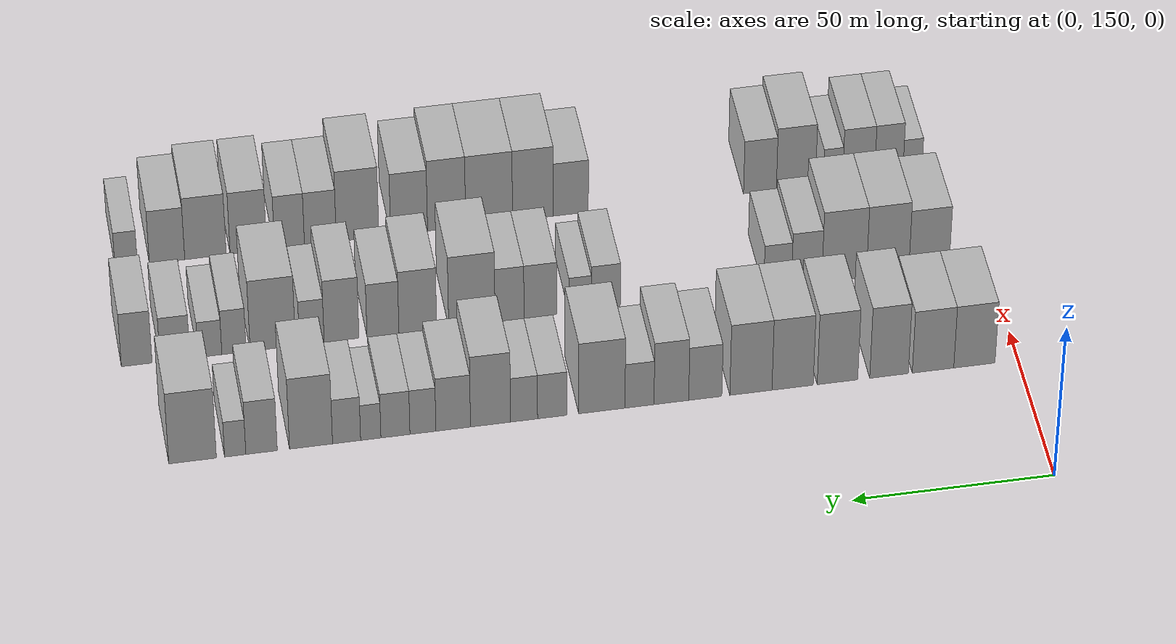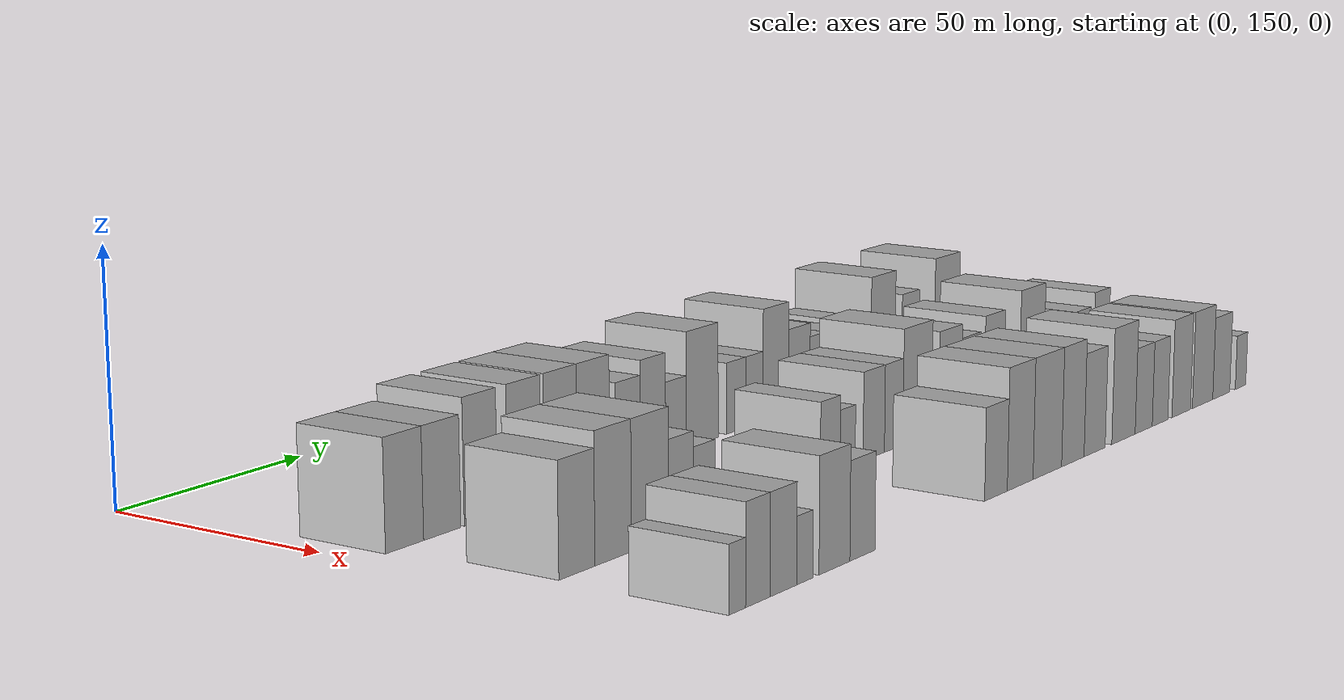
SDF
<sdf version="1.6">
 <world name="default">
  <model name="building_57">
   <static>1</static>
   <pose>50.0000 161.1066 0 0.000000 0.000000 0.000000</pose>
   <link name="link">
    <pose>0 0 10.50 0 0 0</pose>
    <collision name="collision"><geometry><box><size>20.0000 10.3818 21.0000</size></box></geometry></collision>
    <visual name="visual">
     <cast_shadows>0</cast_shadows>
     <geometry><box><size>20.0000 10.3818 21.0000</size></box></geometry>
     <material>
      <script>
       <uri>model://HANNAS_wall/materials/scripts</uri>
       <uri>model://HANNAS_wall/materials/textures</uri>
       <name>vrc/HANNAS_wall</name>
      </script>
     </material>
    </visual>
   </link>
  </model>
  <model name="building_58">
   <static>1</static>
   <pose>50.0000 171.5156 0 0.000000 0.000000 0.000000</pose>
   <link name="link">
    <pose>0 0 10.50 0 0 0</pose>
    <collision name="collision"><geometry><box><size>20.0000 10.4361 21.0000</size></box></geometry></collision>
    <visual name="visual">
     <cast_shadows>0</cast_shadows>
     <geometry><box><size>20.0000 10.4361 21.0000</size></box></geometry>
     <material>
      <script>
       <uri>model://HANNAS_wall/materials/scripts</uri>
       <uri>model://HANNAS_wall/materials/textures</uri>
       <name>vrc/HANNAS_wall</name>
      </script>
     </material>
    </visual>
   </link>
  </model>
  <model name="building_59">
   <static>1</static>
   <pose>50.0000 182.5768 0 0.000000 0.000000 0.000000</pose>
   <link name="link">
    <pose>0 0 12.00 0 0 0</pose>
    <collision name="collision"><geometry><box><size>20.0000 9.6863 24.0000</size></box></geometry></collision>
    <visual name="visual">
     <cast_shadows>0</cast_shadows>
     <geometry><box><size>20.0000 9.6863 24.0000</size></box></geometry>
     <material>
      <script>
       <uri>model://HANNAS_wall/materials/scripts</uri>
       <uri>model://HANNAS_wall/materials/textures</uri>
       <name>vrc/HANNAS_wall</name>
      </script>
     </material>
    </visual>
   </link>
  </model>
  <model name="building_60">
   <static>1</static>
   <pose>50.0000 195.4977 0 0.000000 0.000000 0.000000</pose>
   <link name="link">
    <pose>0 0 12.00 0 0 0</pose>
    <collision name="collision"><geometry><box><size>20.0000 10.1554 24.0000</size></box></geometry></collision>
    <visual name="visual">
     <cast_shadows>0</cast_shadows>
     <geometry><box><size>20.0000 10.1554 24.0000</size></box></geometry>
     <material>
      <script>
       <uri>model://HANNAS_wall/materials/scripts</uri>
       <uri>model://HANNAS_wall/materials/textures</uri>
       <name>vrc/HANNAS_wall</name>
      </script>
     </material>
    </visual>
   </link>
  </model>
  <model name="building_61">
   <static>1</static>
   <pose>50.0000 206.7343 0 0.000000 0.000000 0.000000</pose>
   <link name="link">
    <pose>0 0 12.00 0 0 0</pose>
    <collision name="collision"><geometry><box><size>20.0000 10.3178 24.0000</size></box></geometry></collision>
    <visual name="visual">
     <cast_shadows>0</cast_shadows>
     <geometry><box><size>20.0000 10.3178 24.0000</size></box></geometry>
     <material>
      <script>
       <uri>model://HANNAS_wall/materials/scripts</uri>
       <uri>model://HANNAS_wall/materials/textures</uri>
       <name>vrc/HANNAS_wall</name>
      </script>
     </material>
    </visual>
   </link>
  </model>
  <model name="building_62">
   <static>1</static>
   <pose>50.0000 217.1510 0 0.000000 0.000000 0.000000</pose>
   <link name="link">
    <pose>0 0 12.00 0 0 0</pose>
    <collision name="collision"><geometry><box><size>20.0000 10.5157 24.0000</size></box></geometry></collision>
    <visual name="visual">
     <cast_shadows>0</cast_shadows>
     <geometry><box><size>20.0000 10.5157 24.0000</size></box></geometry>
     <material>
      <script>
       <uri>model://HANNAS_wall/materials/scripts</uri>
       <uri>model://HANNAS_wall/materials/textures</uri>
       <name>vrc/HANNAS_wall</name>
      </script>
     </material>
    </visual>
   </link>
  </model>
  <model name="building_63">
   <static>1</static>
   <pose>50.0000 228.5307 0 0.000000 0.000000 0.000000</pose>
   <link name="link">
    <pose>0 0 9.00 0 0 0</pose>
    <collision name="collision"><geometry><box><size>20.0000 8.2437 18.0000</size></box></geometry></collision>
    <visual name="visual">
     <cast_shadows>0</cast_shadows>
     <geometry><box><size>20.0000 8.2437 18.0000</size></box></geometry>
     <material>
      <script>
       <uri>model://HANNAS_wall/materials/scripts</uri>
       <uri>model://HANNAS_wall/materials/textures</uri>
       <name>vrc/HANNAS_wall</name>
      </script>
     </material>
    </visual>
   </link>
  </model>
  <model name="building_64">
   <static>1</static>
   <pose>50.0000 236.9705 0 0.000000 0.000000 0.000000</pose>
   <link name="link">
    <pose>0 0 10.50 0 0 0</pose>
    <collision name="collision"><geometry><box><size>20.0000 8.6359 21.0000</size></box></geometry></collision>
    <visual name="visual">
     <cast_shadows>0</cast_shadows>
     <geometry><box><size>20.0000 8.6359 21.0000</size></box></geometry>
     <material>
      <script>
       <uri>model://HANNAS_wall/materials/scripts</uri>
       <uri>model://HANNAS_wall/materials/textures</uri>
       <name>vrc/HANNAS_wall</name>
      </script>
     </material>
    </visual>
   </link>
  </model>
  <model name="building_65">
   <static>1</static>
   <pose>50.0000 244.8930 0 0.000000 0.000000 0.000000</pose>
   <link name="link">
    <pose>0 0 7.50 0 0 0</pose>
    <collision name="collision"><geometry><box><size>20.0000 7.2090 15.0000</size></box></geometry></collision>
    <visual name="visual">
     <cast_shadows>0</cast_shadows>
     <geometry><box><size>20.0000 7.2090 15.0000</size></box></geometry>
     <material>
      <script>
       <uri>model://HANNAS_wall/materials/scripts</uri>
       <uri>model://HANNAS_wall/materials/textures</uri>
       <name>vrc/HANNAS_wall</name>
      </script>
     </material>
    </visual>
   </link>
  </model>
  <model name="building_66">
   <static>1</static>
   <pose>50.0000 254.2380 0 0.000000 0.000000 0.000000</pose>
   <link name="link">
    <pose>0 0 12.00 0 0 0</pose>
    <collision name="collision"><geometry><box><size>20.0000 11.4810 24.0000</size></box></geometry></collision>
    <visual name="visual">
     <cast_shadows>0</cast_shadows>
     <geometry><box><size>20.0000 11.4810 24.0000</size></box></geometry>
     <material>
      <script>
       <uri>model://HANNAS_wall/materials/scripts</uri>
       <uri>model://HANNAS_wall/materials/textures</uri>
       <name>vrc/HANNAS_wall</name>
      </script>
     </material>
    </visual>
   </link>
  </model>
  <model name="building_67">
   <static>1</static>
   <pose>50.0000 266.5727 0 0.000000 0.000000 0.000000</pose>
   <link name="link">
    <pose>0 0 7.50 0 0 0</pose>
    <collision name="collision"><geometry><box><size>20.0000 7.1884 15.0000</size></box></geometry></collision>
    <visual name="visual">
     <cast_shadows>0</cast_shadows>
     <geometry><box><size>20.0000 7.1884 15.0000</size></box></geometry>
     <material>
      <script>
       <uri>model://HANNAS_wall/materials/scripts</uri>
       <uri>model://HANNAS_wall/materials/textures</uri>
       <name>vrc/HANNAS_wall</name>
      </script>
     </material>
    </visual>
   </link>
  </model>
  <model name="building_68">
   <static>1</static>
   <pose>50.0000 273.5082 0 0.000000 0.000000 0.000000</pose>
   <link name="link">
    <pose>0 0 7.50 0 0 0</pose>
    <collision name="collision"><geometry><box><size>20.0000 6.6827 15.0000</size></box></geometry></collision>
    <visual name="visual">
     <cast_shadows>0</cast_shadows>
     <geometry><box><size>20.0000 6.6827 15.0000</size></box></geometry>
     <material>
      <script>
       <uri>model://HANNAS_wall/materials/scripts</uri>
       <uri>model://HANNAS_wall/materials/textures</uri>
       <name>vrc/HANNAS_wall</name>
      </script>
     </material>
    </visual>
   </link>
  </model>
  <model name="building_69">
   <static>1</static>
   <pose>50.0000 281.7987 0 0.000000 0.000000 0.000000</pose>
   <link name="link">
    <pose>0 0 12.00 0 0 0</pose>
    <collision name="collision"><geometry><box><size>20.0000 9.8983 24.0000</size></box></geometry></collision>
    <visual name="visual">
     <cast_shadows>0</cast_shadows>
     <geometry><box><size>20.0000 9.8983 24.0000</size></box></geometry>
     <material>
      <script>
       <uri>model://HANNAS_wall/materials/scripts</uri>
       <uri>model://HANNAS_wall/materials/textures</uri>
       <name>vrc/HANNAS_wall</name>
      </script>
     </material>
    </visual>
   </link>
  </model>
  <model name="building_70">
   <static>1</static>
   <pose>50.0000 291.0073 0 0.000000 0.000000 0.000000</pose>
   <link name="link">
    <pose>0 0 9.00 0 0 0</pose>
    <collision name="collision"><geometry><box><size>20.0000 8.5188 18.0000</size></box></geometry></collision>
    <visual name="visual">
     <cast_shadows>0</cast_shadows>
     <geometry><box><size>20.0000 8.5188 18.0000</size></box></geometry>
     <material>
      <script>
       <uri>model://HANNAS_wall/materials/scripts</uri>
       <uri>model://HANNAS_wall/materials/textures</uri>
       <name>vrc/HANNAS_wall</name>
      </script>
     </material>
    </visual>
   </link>
  </model>
  <model name="building_71">
   <static>1</static>
   <pose>50.0000 298.4660 0 0.000000 0.000000 0.000000</pose>
   <link name="link">
    <pose>0 0 7.50 0 0 0</pose>
    <collision name="collision"><geometry><box><size>20.0000 6.3985 15.0000</size></box></geometry></collision>
    <visual name="visual">
     <cast_shadows>0</cast_shadows>
     <geometry><box><size>20.0000 6.3985 15.0000</size></box></geometry>
     <material>
      <script>
       <uri>model://HANNAS_wall/materials/scripts</uri>
       <uri>model://HANNAS_wall/materials/textures</uri>
       <name>vrc/HANNAS_wall</name>
      </script>
     </material>
    </visual>
   </link>
  </model>
  <model name="building_72">
   <static>1</static>
   <pose>50.0000 305.2374 0 0.000000 0.000000 0.000000</pose>
   <link name="link">
    <pose>0 0 7.50 0 0 0</pose>
    <collision name="collision"><geometry><box><size>20.0000 7.1443 15.0000</size></box></geometry></collision>
    <visual name="visual">
     <cast_shadows>0</cast_shadows>
     <geometry><box><size>20.0000 7.1443 15.0000</size></box></geometry>
     <material>
      <script>
       <uri>model://HANNAS_wall/materials/scripts</uri>
       <uri>model://HANNAS_wall/materials/textures</uri>
       <name>vrc/HANNAS_wall</name>
      </script>
     </material>
    </visual>
   </link>
  </model>
  <model name="building_73">
   <static>1</static>
   <pose>50.0000 311.3013 0 0.000000 0.000000 0.000000</pose>
   <link name="link">
    <pose>0 0 6.00 0 0 0</pose>
    <collision name="collision"><geometry><box><size>20.0000 4.9836 12.0000</size></box></geometry></collision>
    <visual name="visual">
     <cast_shadows>0</cast_shadows>
     <geometry><box><size>20.0000 4.9836 12.0000</size></box></geometry>
     <material>
      <script>
       <uri>model://HANNAS_wall/materials/scripts</uri>
       <uri>model://HANNAS_wall/materials/textures</uri>
       <name>vrc/HANNAS_wall</name>
      </script>
     </material>
    </visual>
   </link>
  </model>
  <model name="building_74">
   <static>1</static>
   <pose>50.0000 317.2399 0 0.000000 0.000000 0.000000</pose>
   <link name="link">
    <pose>0 0 7.50 0 0 0</pose>
    <collision name="collision"><geometry><box><size>20.0000 6.8936 15.0000</size></box></geometry></collision>
    <visual name="visual">
     <cast_shadows>0</cast_shadows>
     <geometry><box><size>20.0000 6.8936 15.0000</size></box></geometry>
     <material>
      <script>
       <uri>model://HANNAS_wall/materials/scripts</uri>
       <uri>model://HANNAS_wall/materials/textures</uri>
       <name>vrc/HANNAS_wall</name>
      </script>
     </material>
    </visual>
   </link>
  </model>
  <model name="building_75">
   <static>1</static>
   <pose>50.0000 325.9616 0 0.000000 0.000000 0.000000</pose>
   <link name="link">
    <pose>0 0 12.00 0 0 0</pose>
    <collision name="collision"><geometry><box><size>20.0000 10.5498 24.0000</size></box></geometry></collision>
    <visual name="visual">
     <cast_shadows>0</cast_shadows>
     <geometry><box><size>20.0000 10.5498 24.0000</size></box></geometry>
     <material>
      <script>
       <uri>model://HANNAS_wall/materials/scripts</uri>
       <uri>model://HANNAS_wall/materials/textures</uri>
       <name>vrc/HANNAS_wall</name>
      </script>
     </material>
    </visual>
   </link>
  </model>
  <model name="building_76">
   <static>1</static>
   <pose>50.0000 338.0827 0 0.000000 0.000000 0.000000</pose>
   <link name="link">
    <pose>0 0 9.00 0 0 0</pose>
    <collision name="collision"><geometry><box><size>20.0000 7.6923 18.0000</size></box></geometry></collision>
    <visual name="visual">
     <cast_shadows>0</cast_shadows>
     <geometry><box><size>20.0000 7.6923 18.0000</size></box></geometry>
     <material>
      <script>
       <uri>model://HANNAS_wall/materials/scripts</uri>
       <uri>model://HANNAS_wall/materials/textures</uri>
       <name>vrc/HANNAS_wall</name>
      </script>
     </material>
    </visual>
   </link>
  </model>
  <model name="building_77">
   <static>1</static>
   <pose>50.0000 344.5270 0 0.000000 0.000000 0.000000</pose>
   <link name="link">
    <pose>0 0 6.00 0 0 0</pose>
    <collision name="collision"><geometry><box><size>20.0000 5.1963 12.0000</size></box></geometry></collision>
    <visual name="visual">
     <cast_shadows>0</cast_shadows>
     <geometry><box><size>20.0000 5.1963 12.0000</size></box></geometry>
     <material>
      <script>
       <uri>model://HANNAS_wall/materials/scripts</uri>
       <uri>model://HANNAS_wall/materials/textures</uri>
       <name>vrc/HANNAS_wall</name>
      </script>
     </material>
    </visual>
   </link>
  </model>
  <model name="building_78">
   <static>1</static>
   <pose>50.0000 354.9378 0 0.000000 0.000000 0.000000</pose>
   <link name="link">
    <pose>0 0 12.00 0 0 0</pose>
    <collision name="collision"><geometry><box><size>20.0000 11.6253 24.0000</size></box></geometry></collision>
    <visual name="visual">
     <cast_shadows>0</cast_shadows>
     <geometry><box><size>20.0000 11.6253 24.0000</size></box></geometry>
     <material>
      <script>
       <uri>model://HANNAS_wall/materials/scripts</uri>
       <uri>model://HANNAS_wall/materials/textures</uri>
       <name>vrc/HANNAS_wall</name>
      </script>
     </material>
    </visual>
   </link>
  </model>
  <model name="building_136">
   <static>1</static>
   <pose>85.0000 165.0271 0 0.000000 0.000000 0.000000</pose>
   <link name="link">
    <pose>0 0 10.50 0 0 0</pose>
    <collision name="collision"><geometry><box><size>20.0000 10.3113 21.0000</size></box></geometry></collision>
    <visual name="visual">
     <cast_shadows>0</cast_shadows>
     <geometry><box><size>20.0000 10.3113 21.0000</size></box></geometry>
     <material>
      <script>
       <uri>model://HANNAS_wall/materials/scripts</uri>
       <uri>model://HANNAS_wall/materials/textures</uri>
       <name>vrc/HANNAS_wall</name>
      </script>
     </material>
    </visual>
   </link>
  </model>
  <model name="building_137">
   <static>1</static>
   <pose>85.0000 175.5868 0 0.000000 0.000000 0.000000</pose>
   <link name="link">
    <pose>0 0 12.00 0 0 0</pose>
    <collision name="collision"><geometry><box><size>20.0000 10.8081 24.0000</size></box></geometry></collision>
    <visual name="visual">
     <cast_shadows>0</cast_shadows>
     <geometry><box><size>20.0000 10.8081 24.0000</size></box></geometry>
     <material>
      <script>
       <uri>model://HANNAS_wall/materials/scripts</uri>
       <uri>model://HANNAS_wall/materials/textures</uri>
       <name>vrc/HANNAS_wall</name>
      </script>
     </material>
    </visual>
   </link>
  </model>
  <model name="building_138">
   <static>1</static>
   <pose>85.0000 186.6764 0 0.000000 0.000000 0.000000</pose>
   <link name="link">
    <pose>0 0 12.00 0 0 0</pose>
    <collision name="collision"><geometry><box><size>20.0000 11.3711 24.0000</size></box></geometry></collision>
    <visual name="visual">
     <cast_shadows>0</cast_shadows>
     <geometry><box><size>20.0000 11.3711 24.0000</size></box></geometry>
     <material>
      <script>
       <uri>model://HANNAS_wall/materials/scripts</uri>
       <uri>model://HANNAS_wall/materials/textures</uri>
       <name>vrc/HANNAS_wall</name>
      </script>
     </material>
    </visual>
   </link>
  </model>
  <model name="building_139">
   <static>1</static>
   <pose>85.0000 196.2268 0 0.000000 0.000000 0.000000</pose>
   <link name="link">
    <pose>0 0 9.00 0 0 0</pose>
    <collision name="collision"><geometry><box><size>20.0000 7.7297 18.0000</size></box></geometry></collision>
    <visual name="visual">
     <cast_shadows>0</cast_shadows>
     <geometry><box><size>20.0000 7.7297 18.0000</size></box></geometry>
     <material>
      <script>
       <uri>model://HANNAS_wall/materials/scripts</uri>
       <uri>model://HANNAS_wall/materials/textures</uri>
       <name>vrc/HANNAS_wall</name>
      </script>
     </material>
    </visual>
   </link>
  </model>
  <model name="building_140">
   <static>1</static>
   <pose>85.0000 203.6118 0 0.000000 0.000000 0.000000</pose>
   <link name="link">
    <pose>0 0 7.50 0 0 0</pose>
    <collision name="collision"><geometry><box><size>20.0000 7.0404 15.0000</size></box></geometry></collision>
    <visual name="visual">
     <cast_shadows>0</cast_shadows>
     <geometry><box><size>20.0000 7.0404 15.0000</size></box></geometry>
     <material>
      <script>
       <uri>model://HANNAS_wall/materials/scripts</uri>
       <uri>model://HANNAS_wall/materials/textures</uri>
       <name>vrc/HANNAS_wall</name>
      </script>
     </material>
    </visual>
   </link>
  </model>
  <model name="building_141">
   <static>1</static>
   <pose>85.0000 247.1425 0 0.000000 0.000000 0.000000</pose>
   <link name="link">
    <pose>0 0 7.50 0 0 0</pose>
    <collision name="collision"><geometry><box><size>20.0000 7.3404 15.0000</size></box></geometry></collision>
    <visual name="visual">
     <cast_shadows>0</cast_shadows>
     <geometry><box><size>20.0000 7.3404 15.0000</size></box></geometry>
     <material>
      <script>
       <uri>model://HANNAS_wall/materials/scripts</uri>
       <uri>model://HANNAS_wall/materials/textures</uri>
       <name>vrc/HANNAS_wall</name>
      </script>
     </material>
    </visual>
   </link>
  </model>
  <model name="building_142">
   <static>1</static>
   <pose>85.0000 253.6233 0 0.000000 0.000000 0.000000</pose>
   <link name="link">
    <pose>0 0 6.00 0 0 0</pose>
    <collision name="collision"><geometry><box><size>20.0000 5.6212 12.0000</size></box></geometry></collision>
    <visual name="visual">
     <cast_shadows>0</cast_shadows>
     <geometry><box><size>20.0000 5.6212 12.0000</size></box></geometry>
     <material>
      <script>
       <uri>model://HANNAS_wall/materials/scripts</uri>
       <uri>model://HANNAS_wall/materials/textures</uri>
       <name>vrc/HANNAS_wall</name>
      </script>
     </material>
    </visual>
   </link>
  </model>
  <model name="building_143">
   <static>1</static>
   <pose>85.0000 263.5810 0 0.000000 0.000000 0.000000</pose>
   <link name="link">
    <pose>0 0 9.00 0 0 0</pose>
    <collision name="collision"><geometry><box><size>20.0000 8.2943 18.0000</size></box></geometry></collision>
    <visual name="visual">
     <cast_shadows>0</cast_shadows>
     <geometry><box><size>20.0000 8.2943 18.0000</size></box></geometry>
     <material>
      <script>
       <uri>model://HANNAS_wall/materials/scripts</uri>
       <uri>model://HANNAS_wall/materials/textures</uri>
       <name>vrc/HANNAS_wall</name>
      </script>
     </material>
    </visual>
   </link>
  </model>
  <model name="building_144">
   <static>1</static>
   <pose>85.0000 271.3674 0 0.000000 0.000000 0.000000</pose>
   <link name="link">
    <pose>0 0 9.00 0 0 0</pose>
    <collision name="collision"><geometry><box><size>20.0000 7.2785 18.0000</size></box></geometry></collision>
    <visual name="visual">
     <cast_shadows>0</cast_shadows>
     <geometry><box><size>20.0000 7.2785 18.0000</size></box></geometry>
     <material>
      <script>
       <uri>model://HANNAS_wall/materials/scripts</uri>
       <uri>model://HANNAS_wall/materials/textures</uri>
       <name>vrc/HANNAS_wall</name>
      </script>
     </material>
    </visual>
   </link>
  </model>
  <model name="building_145">
   <static>1</static>
   <pose>85.0000 280.8345 0 0.000000 0.000000 0.000000</pose>
   <link name="link">
    <pose>0 0 12.00 0 0 0</pose>
    <collision name="collision"><geometry><box><size>20.0000 11.6557 24.0000</size></box></geometry></collision>
    <visual name="visual">
     <cast_shadows>0</cast_shadows>
     <geometry><box><size>20.0000 11.6557 24.0000</size></box></geometry>
     <material>
      <script>
       <uri>model://HANNAS_wall/materials/scripts</uri>
       <uri>model://HANNAS_wall/materials/textures</uri>
       <name>vrc/HANNAS_wall</name>
      </script>
     </material>
    </visual>
   </link>
  </model>
  <model name="building_146">
   <static>1</static>
   <pose>85.0000 294.3858 0 0.000000 0.000000 0.000000</pose>
   <link name="link">
    <pose>0 0 10.50 0 0 0</pose>
    <collision name="collision"><geometry><box><size>20.0000 9.4469 21.0000</size></box></geometry></collision>
    <visual name="visual">
     <cast_shadows>0</cast_shadows>
     <geometry><box><size>20.0000 9.4469 21.0000</size></box></geometry>
     <material>
      <script>
       <uri>model://HANNAS_wall/materials/scripts</uri>
       <uri>model://HANNAS_wall/materials/textures</uri>
       <name>vrc/HANNAS_wall</name>
      </script>
     </material>
    </visual>
   </link>
  </model>
  <model name="building_147">
   <static>1</static>
   <pose>85.0000 303.1085 0 0.000000 0.000000 0.000000</pose>
   <link name="link">
    <pose>0 0 9.00 0 0 0</pose>
    <collision name="collision"><geometry><box><size>20.0000 7.9986 18.0000</size></box></geometry></collision>
    <visual name="visual">
     <cast_shadows>0</cast_shadows>
     <geometry><box><size>20.0000 7.9986 18.0000</size></box></geometry>
     <material>
      <script>
       <uri>model://HANNAS_wall/materials/scripts</uri>
       <uri>model://HANNAS_wall/materials/textures</uri>
       <name>vrc/HANNAS_wall</name>
      </script>
     </material>
    </visual>
   </link>
  </model>
  <model name="building_148">
   <static>1</static>
   <pose>85.0000 313.4570 0 0.000000 0.000000 0.000000</pose>
   <link name="link">
    <pose>0 0 10.50 0 0 0</pose>
    <collision name="collision"><geometry><box><size>20.0000 8.6983 21.0000</size></box></geometry></collision>
    <visual name="visual">
     <cast_shadows>0</cast_shadows>
     <geometry><box><size>20.0000 8.6983 21.0000</size></box></geometry>
     <material>
      <script>
       <uri>model://HANNAS_wall/materials/scripts</uri>
       <uri>model://HANNAS_wall/materials/textures</uri>
       <name>vrc/HANNAS_wall</name>
      </script>
     </material>
    </visual>
   </link>
  </model>
  <model name="building_149">
   <static>1</static>
   <pose>85.0000 320.8846 0 0.000000 0.000000 0.000000</pose>
   <link name="link">
    <pose>0 0 7.50 0 0 0</pose>
    <collision name="collision"><geometry><box><size>20.0000 6.1569 15.0000</size></box></geometry></collision>
    <visual name="visual">
     <cast_shadows>0</cast_shadows>
     <geometry><box><size>20.0000 6.1569 15.0000</size></box></geometry>
     <material>
      <script>
       <uri>model://HANNAS_wall/materials/scripts</uri>
       <uri>model://HANNAS_wall/materials/textures</uri>
       <name>vrc/HANNAS_wall</name>
      </script>
     </material>
    </visual>
   </link>
  </model>
  <model name="building_150">
   <static>1</static>
   <pose>85.0000 330.6049 0 0.000000 0.000000 0.000000</pose>
   <link name="link">
    <pose>0 0 12.00 0 0 0</pose>
    <collision name="collision"><geometry><box><size>20.0000 11.2838 24.0000</size></box></geometry></collision>
    <visual name="visual">
     <cast_shadows>0</cast_shadows>
     <geometry><box><size>20.0000 11.2838 24.0000</size></box></geometry>
     <material>
      <script>
       <uri>model://HANNAS_wall/materials/scripts</uri>
       <uri>model://HANNAS_wall/materials/textures</uri>
       <name>vrc/HANNAS_wall</name>
      </script>
     </material>
    </visual>
   </link>
  </model>
  <model name="building_151">
   <static>1</static>
   <pose>85.0000 340.2652 0 0.000000 0.000000 0.000000</pose>
   <link name="link">
    <pose>0 0 7.50 0 0 0</pose>
    <collision name="collision"><geometry><box><size>20.0000 6.0368 15.0000</size></box></geometry></collision>
    <visual name="visual">
     <cast_shadows>0</cast_shadows>
     <geometry><box><size>20.0000 6.0368 15.0000</size></box></geometry>
     <material>
      <script>
       <uri>model://HANNAS_wall/materials/scripts</uri>
       <uri>model://HANNAS_wall/materials/textures</uri>
       <name>vrc/HANNAS_wall</name>
      </script>
     </material>
    </visual>
   </link>
  </model>
  <model name="building_152">
   <static>1</static>
   <pose>85.0000 346.2528 0 0.000000 0.000000 0.000000</pose>
   <link name="link">
    <pose>0 0 6.00 0 0 0</pose>
    <collision name="collision"><geometry><box><size>20.0000 5.9384 12.0000</size></box></geometry></collision>
    <visual name="visual">
     <cast_shadows>0</cast_shadows>
     <geometry><box><size>20.0000 5.9384 12.0000</size></box></geometry>
     <material>
      <script>
       <uri>model://HANNAS_wall/materials/scripts</uri>
       <uri>model://HANNAS_wall/materials/textures</uri>
       <name>vrc/HANNAS_wall</name>
      </script>
     </material>
    </visual>
   </link>
  </model>
  <model name="building_153">
   <static>1</static>
   <pose>85.0000 354.9166 0 0.000000 0.000000 0.000000</pose>
   <link name="link">
    <pose>0 0 7.50 0 0 0</pose>
    <collision name="collision"><geometry><box><size>20.0000 7.3892 15.0000</size></box></geometry></collision>
    <visual name="visual">
     <cast_shadows>0</cast_shadows>
     <geometry><box><size>20.0000 7.3892 15.0000</size></box></geometry>
     <material>
      <script>
       <uri>model://HANNAS_wall/materials/scripts</uri>
       <uri>model://HANNAS_wall/materials/textures</uri>
       <name>vrc/HANNAS_wall</name>
      </script>
     </material>
    </visual>
   </link>
  </model>
  <model name="building_154">
   <static>1</static>
   <pose>85.0000 364.4182 0 0.000000 0.000000 0.000000</pose>
   <link name="link">
    <pose>0 0 9.00 0 0 0</pose>
    <collision name="collision"><geometry><box><size>20.0000 7.6141 18.0000</size></box></geometry></collision>
    <visual name="visual">
     <cast_shadows>0</cast_shadows>
     <geometry><box><size>20.0000 7.6141 18.0000</size></box></geometry>
     <material>
      <script>
       <uri>model://HANNAS_wall/materials/scripts</uri>
       <uri>model://HANNAS_wall/materials/textures</uri>
       <name>vrc/HANNAS_wall</name>
      </script>
     </material>
    </visual>
   </link>
  </model>
  <model name="building_217">
   <static>1</static>
   <pose>120.0000 161.7926 0 0.000000 0.000000 0.000000</pose>
   <link name="link">
    <pose>0 0 6.00 0 0 0</pose>
    <collision name="collision"><geometry><box><size>20.0000 4.9453 12.0000</size></box></geometry></collision>
    <visual name="visual">
     <cast_shadows>0</cast_shadows>
     <geometry><box><size>20.0000 4.9453 12.0000</size></box></geometry>
     <material>
      <script>
       <uri>model://HANNAS_wall/materials/scripts</uri>
       <uri>model://HANNAS_wall/materials/textures</uri>
       <name>vrc/HANNAS_wall</name>
      </script>
     </material>
    </visual>
   </link>
  </model>
  <model name="building_218">
   <static>1</static>
   <pose>120.0000 167.9382 0 0.000000 0.000000 0.000000</pose>
   <link name="link">
    <pose>0 0 9.00 0 0 0</pose>
    <collision name="collision"><geometry><box><size>20.0000 7.3459 18.0000</size></box></geometry></collision>
    <visual name="visual">
     <cast_shadows>0</cast_shadows>
     <geometry><box><size>20.0000 7.3459 18.0000</size></box></geometry>
     <material>
      <script>
       <uri>model://HANNAS_wall/materials/scripts</uri>
       <uri>model://HANNAS_wall/materials/textures</uri>
       <name>vrc/HANNAS_wall</name>
      </script>
     </material>
    </visual>
   </link>
  </model>
  <model name="building_219">
   <static>1</static>
   <pose>120.0000 175.7607 0 0.000000 0.000000 0.000000</pose>
   <link name="link">
    <pose>0 0 9.00 0 0 0</pose>
    <collision name="collision"><geometry><box><size>20.0000 8.2991 18.0000</size></box></geometry></collision>
    <visual name="visual">
     <cast_shadows>0</cast_shadows>
     <geometry><box><size>20.0000 8.2991 18.0000</size></box></geometry>
     <material>
      <script>
       <uri>model://HANNAS_wall/materials/scripts</uri>
       <uri>model://HANNAS_wall/materials/textures</uri>
       <name>vrc/HANNAS_wall</name>
      </script>
     </material>
    </visual>
   </link>
  </model>
  <model name="building_220">
   <static>1</static>
   <pose>120.0000 182.4340 0 0.000000 0.000000 0.000000</pose>
   <link name="link">
    <pose>0 0 6.00 0 0 0</pose>
    <collision name="collision"><geometry><box><size>20.0000 5.0474 12.0000</size></box></geometry></collision>
    <visual name="visual">
     <cast_shadows>0</cast_shadows>
     <geometry><box><size>20.0000 5.0474 12.0000</size></box></geometry>
     <material>
      <script>
       <uri>model://HANNAS_wall/materials/scripts</uri>
       <uri>model://HANNAS_wall/materials/textures</uri>
       <name>vrc/HANNAS_wall</name>
      </script>
     </material>
    </visual>
   </link>
  </model>
  <model name="building_221">
   <static>1</static>
   <pose>120.0000 192.0053 0 0.000000 0.000000 0.000000</pose>
   <link name="link">
    <pose>0 0 10.50 0 0 0</pose>
    <collision name="collision"><geometry><box><size>20.0000 10.0953 21.0000</size></box></geometry></collision>
    <visual name="visual">
     <cast_shadows>0</cast_shadows>
     <geometry><box><size>20.0000 10.0953 21.0000</size></box></geometry>
     <material>
      <script>
       <uri>model://HANNAS_wall/materials/scripts</uri>
       <uri>model://HANNAS_wall/materials/textures</uri>
       <name>vrc/HANNAS_wall</name>
      </script>
     </material>
    </visual>
   </link>
  </model>
  <model name="building_222">
   <static>1</static>
   <pose>120.0000 201.2879 0 0.000000 0.000000 0.000000</pose>
   <link name="link">
    <pose>0 0 9.00 0 0 0</pose>
    <collision name="collision"><geometry><box><size>20.0000 8.4699 18.0000</size></box></geometry></collision>
    <visual name="visual">
     <cast_shadows>0</cast_shadows>
     <geometry><box><size>20.0000 8.4699 18.0000</size></box></geometry>
     <material>
      <script>
       <uri>model://HANNAS_wall/materials/scripts</uri>
       <uri>model://HANNAS_wall/materials/textures</uri>
       <name>vrc/HANNAS_wall</name>
      </script>
     </material>
    </visual>
   </link>
  </model>
  <model name="building_223">
   <static>1</static>
   <pose>120.0000 249.9540 0 0.000000 0.000000 0.000000</pose>
   <link name="link">
    <pose>0 0 9.00 0 0 0</pose>
    <collision name="collision"><geometry><box><size>20.0000 8.9541 18.0000</size></box></geometry></collision>
    <visual name="visual">
     <cast_shadows>0</cast_shadows>
     <geometry><box><size>20.0000 8.9541 18.0000</size></box></geometry>
     <material>
      <script>
       <uri>model://HANNAS_wall/materials/scripts</uri>
       <uri>model://HANNAS_wall/materials/textures</uri>
       <name>vrc/HANNAS_wall</name>
      </script>
     </material>
    </visual>
   </link>
  </model>
  <model name="building_224">
   <static>1</static>
   <pose>120.0000 259.6590 0 0.000000 0.000000 0.000000</pose>
   <link name="link">
    <pose>0 0 12.00 0 0 0</pose>
    <collision name="collision"><geometry><box><size>20.0000 10.4558 24.0000</size></box></geometry></collision>
    <visual name="visual">
     <cast_shadows>0</cast_shadows>
     <geometry><box><size>20.0000 10.4558 24.0000</size></box></geometry>
     <material>
      <script>
       <uri>model://HANNAS_wall/materials/scripts</uri>
       <uri>model://HANNAS_wall/materials/textures</uri>
       <name>vrc/HANNAS_wall</name>
      </script>
     </material>
    </visual>
   </link>
  </model>
  <model name="building_225">
   <static>1</static>
   <pose>120.0000 270.8709 0 0.000000 0.000000 0.000000</pose>
   <link name="link">
    <pose>0 0 12.00 0 0 0</pose>
    <collision name="collision"><geometry><box><size>20.0000 11.9679 24.0000</size></box></geometry></collision>
    <visual name="visual">
     <cast_shadows>0</cast_shadows>
     <geometry><box><size>20.0000 11.9679 24.0000</size></box></geometry>
     <material>
      <script>
       <uri>model://HANNAS_wall/materials/scripts</uri>
       <uri>model://HANNAS_wall/materials/textures</uri>
       <name>vrc/HANNAS_wall</name>
      </script>
     </material>
    </visual>
   </link>
  </model>
  <model name="building_226">
   <static>1</static>
   <pose>120.0000 281.7151 0 0.000000 0.000000 0.000000</pose>
   <link name="link">
    <pose>0 0 12.00 0 0 0</pose>
    <collision name="collision"><geometry><box><size>20.0000 9.7206 24.0000</size></box></geometry></collision>
    <visual name="visual">
     <cast_shadows>0</cast_shadows>
     <geometry><box><size>20.0000 9.7206 24.0000</size></box></geometry>
     <material>
      <script>
       <uri>model://HANNAS_wall/materials/scripts</uri>
       <uri>model://HANNAS_wall/materials/textures</uri>
       <name>vrc/HANNAS_wall</name>
      </script>
     </material>
    </visual>
   </link>
  </model>
  <model name="building_227">
   <static>1</static>
   <pose>120.0000 291.2745 0 0.000000 0.000000 0.000000</pose>
   <link name="link">
    <pose>0 0 10.50 0 0 0</pose>
    <collision name="collision"><geometry><box><size>20.0000 9.3982 21.0000</size></box></geometry></collision>
    <visual name="visual">
     <cast_shadows>0</cast_shadows>
     <geometry><box><size>20.0000 9.3982 21.0000</size></box></geometry>
     <material>
      <script>
       <uri>model://HANNAS_wall/materials/scripts</uri>
       <uri>model://HANNAS_wall/materials/textures</uri>
       <name>vrc/HANNAS_wall</name>
      </script>
     </material>
    </visual>
   </link>
  </model>
  <model name="building_228">
   <static>1</static>
   <pose>120.0000 304.3735 0 0.000000 0.000000 0.000000</pose>
   <link name="link">
    <pose>0 0 12.00 0 0 0</pose>
    <collision name="collision"><geometry><box><size>20.0000 10.7998 24.0000</size></box></geometry></collision>
    <visual name="visual">
     <cast_shadows>0</cast_shadows>
     <geometry><box><size>20.0000 10.7998 24.0000</size></box></geometry>
     <material>
      <script>
       <uri>model://HANNAS_wall/materials/scripts</uri>
       <uri>model://HANNAS_wall/materials/textures</uri>
       <name>vrc/HANNAS_wall</name>
      </script>
     </material>
    </visual>
   </link>
  </model>
  <model name="building_229">
   <static>1</static>
   <pose>120.0000 313.8219 0 0.000000 0.000000 0.000000</pose>
   <link name="link">
    <pose>0 0 9.00 0 0 0</pose>
    <collision name="collision"><geometry><box><size>20.0000 8.0970 18.0000</size></box></geometry></collision>
    <visual name="visual">
     <cast_shadows>0</cast_shadows>
     <geometry><box><size>20.0000 8.0970 18.0000</size></box></geometry>
     <material>
      <script>
       <uri>model://HANNAS_wall/materials/scripts</uri>
       <uri>model://HANNAS_wall/materials/textures</uri>
       <name>vrc/HANNAS_wall</name>
      </script>
     </material>
    </visual>
   </link>
  </model>
  <model name="building_230">
   <static>1</static>
   <pose>120.0000 321.6621 0 0.000000 0.000000 0.000000</pose>
   <link name="link">
    <pose>0 0 9.00 0 0 0</pose>
    <collision name="collision"><geometry><box><size>20.0000 7.5834 18.0000</size></box></geometry></collision>
    <visual name="visual">
     <cast_shadows>0</cast_shadows>
     <geometry><box><size>20.0000 7.5834 18.0000</size></box></geometry>
     <material>
      <script>
       <uri>model://HANNAS_wall/materials/scripts</uri>
       <uri>model://HANNAS_wall/materials/textures</uri>
       <name>vrc/HANNAS_wall</name>
      </script>
     </material>
    </visual>
   </link>
  </model>
  <model name="building_231">
   <static>1</static>
   <pose>120.0000 332.0744 0 0.000000 0.000000 0.000000</pose>
   <link name="link">
    <pose>0 0 10.50 0 0 0</pose>
    <collision name="collision"><geometry><box><size>20.0000 9.2412 21.0000</size></box></geometry></collision>
    <visual name="visual">
     <cast_shadows>0</cast_shadows>
     <geometry><box><size>20.0000 9.2412 21.0000</size></box></geometry>
     <material>
      <script>
       <uri>model://HANNAS_wall/materials/scripts</uri>
       <uri>model://HANNAS_wall/materials/textures</uri>
       <name>vrc/HANNAS_wall</name>
      </script>
     </material>
    </visual>
   </link>
  </model>
  <model name="building_232">
   <static>1</static>
   <pose>120.0000 342.9264 0 0.000000 0.000000 0.000000</pose>
   <link name="link">
    <pose>0 0 10.50 0 0 0</pose>
    <collision name="collision"><geometry><box><size>20.0000 10.4627 21.0000</size></box></geometry></collision>
    <visual name="visual">
     <cast_shadows>0</cast_shadows>
     <geometry><box><size>20.0000 10.4627 21.0000</size></box></geometry>
     <material>
      <script>
       <uri>model://HANNAS_wall/materials/scripts</uri>
       <uri>model://HANNAS_wall/materials/textures</uri>
       <name>vrc/HANNAS_wall</name>
      </script>
     </material>
    </visual>
   </link>
  </model>
  <model name="building_233">
   <static>1</static>
   <pose>120.0000 352.6261 0 0.000000 0.000000 0.000000</pose>
   <link name="link">
    <pose>0 0 9.00 0 0 0</pose>
    <collision name="collision"><geometry><box><size>20.0000 8.9367 18.0000</size></box></geometry></collision>
    <visual name="visual">
     <cast_shadows>0</cast_shadows>
     <geometry><box><size>20.0000 8.9367 18.0000</size></box></geometry>
     <material>
      <script>
       <uri>model://HANNAS_wall/materials/scripts</uri>
       <uri>model://HANNAS_wall/materials/textures</uri>
       <name>vrc/HANNAS_wall</name>
      </script>
     </material>
    </visual>
   </link>
  </model>
  <model name="building_234">
   <static>1</static>
   <pose>120.0000 362.9195 0 0.000000 0.000000 0.000000</pose>
   <link name="link">
    <pose>0 0 6.00 0 0 0</pose>
    <collision name="collision"><geometry><box><size>20.0000 5.6501 12.0000</size></box></geometry></collision>
    <visual name="visual">
     <cast_shadows>0</cast_shadows>
     <geometry><box><size>20.0000 5.6501 12.0000</size></box></geometry>
     <material>
      <script>
       <uri>model://HANNAS_wall/materials/scripts</uri>
       <uri>model://HANNAS_wall/materials/textures</uri>
       <name>vrc/HANNAS_wall</name>
      </script>
     </material>
    </visual>
   </link>
  </model>
 </world>
</sdf>
